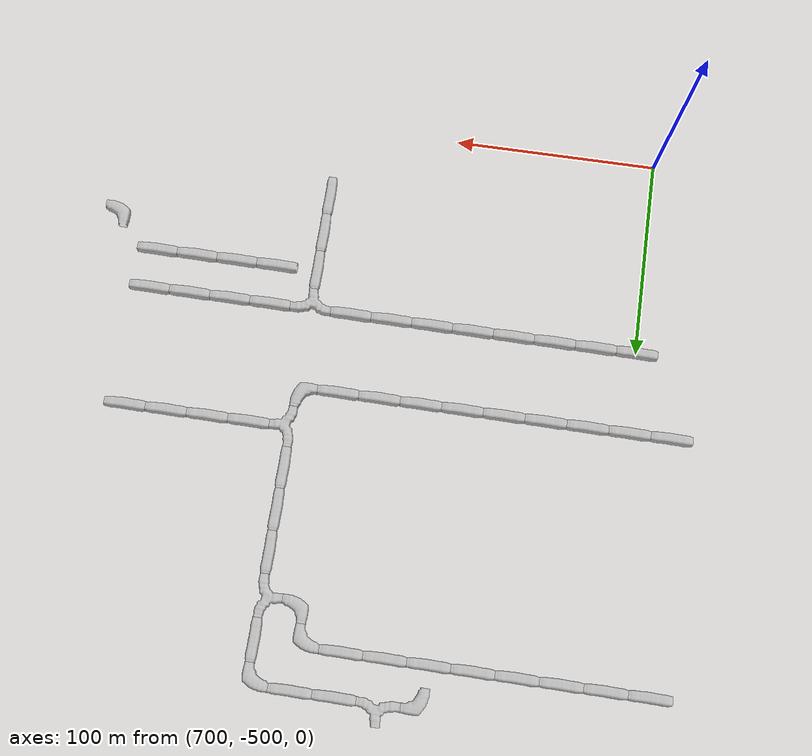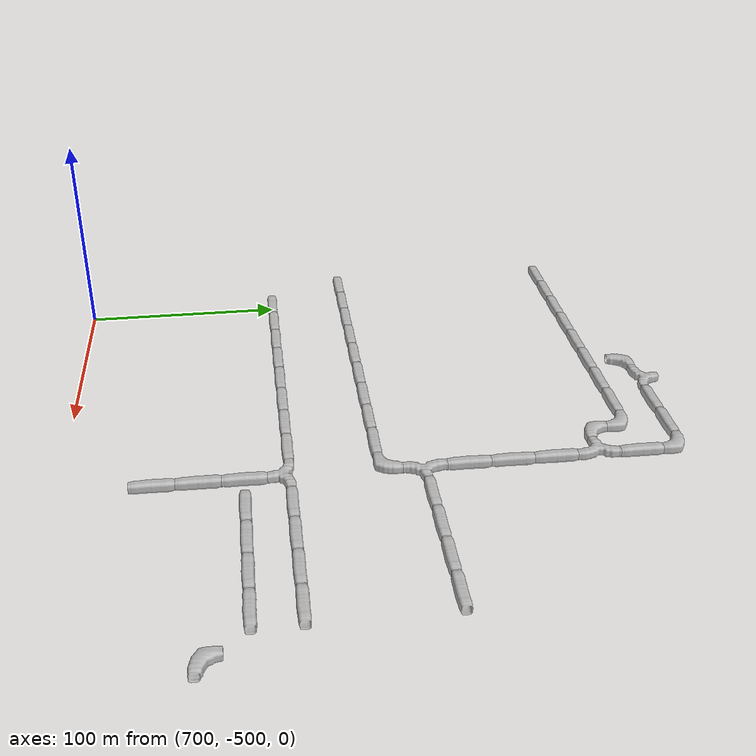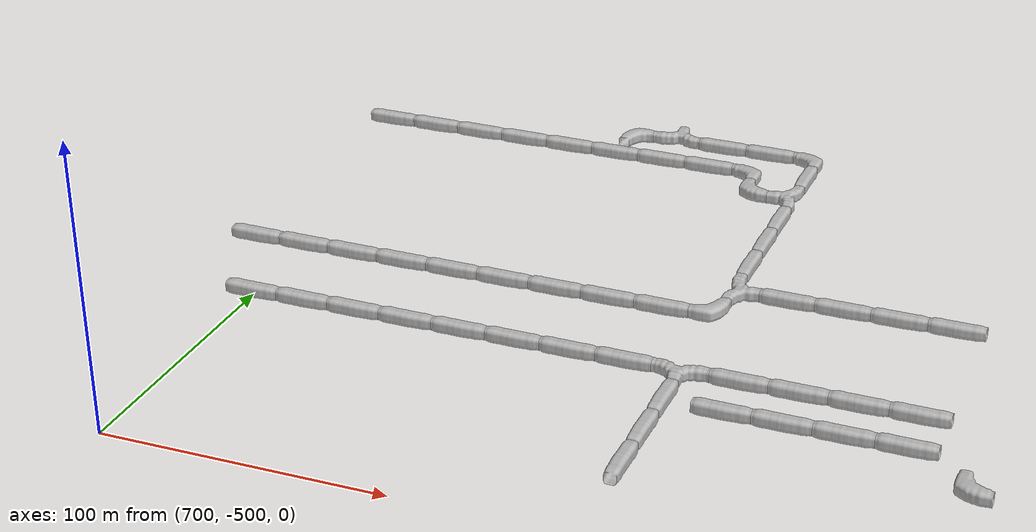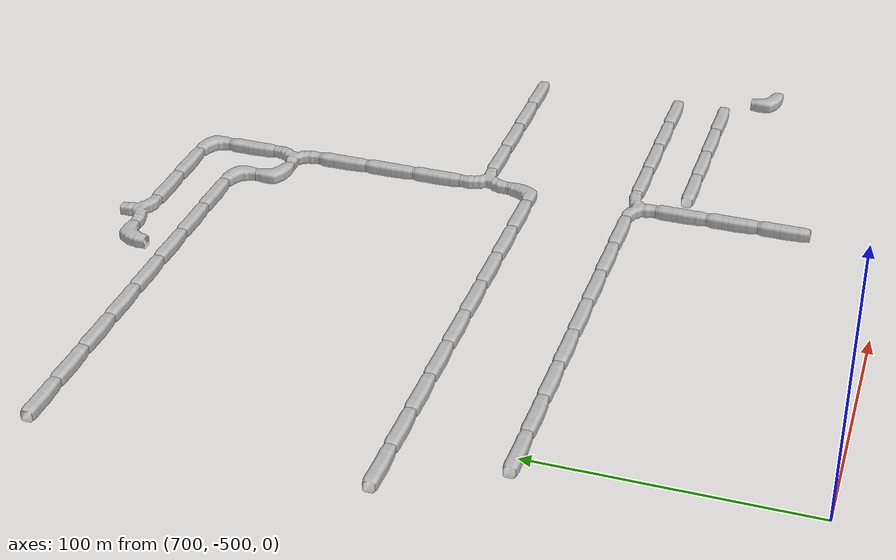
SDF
<sdf version="1.6">
 <world name="cave_32000_8">
  <include>
   <static>true</static>
   <name>cave_34_-18</name>
   <pose>680 -360 0 0 0 1.5707963267948966</pose>
   <uri>model://cave_straight_20m</uri>
  </include>
  <include>
   <static>true</static>
   <name>cave_35_-18</name>
   <pose>700 -360 0 0 0 1.5707963267948966</pose>
   <uri>model://cave_straight_20m</uri>
  </include>
  <include>
   <static>true</static>
   <name>cave_36_-18</name>
   <pose>720 -360 0 0 0 1.5707963267948966</pose>
   <uri>model://cave_straight_20m</uri>
  </include>
  <include>
   <static>true</static>
   <name>cave_37_-18</name>
   <pose>740 -360 0 0 0 1.5707963267948966</pose>
   <uri>model://cave_straight_20m</uri>
  </include>
  <include>
   <static>true</static>
   <name>cave_38_-18</name>
   <pose>760 -360 0 0 0 1.5707963267948966</pose>
   <uri>model://cave_straight_20m</uri>
  </include>
  <include>
   <static>true</static>
   <name>cave_39_-18</name>
   <pose>780 -360 0 0 0 1.5707963267948966</pose>
   <uri>model://cave_straight_20m</uri>
  </include>
  <include>
   <static>true</static>
   <name>cave_40_-18</name>
   <pose>800 -360 0 0 0 1.5707963267948966</pose>
   <uri>model://cave_straight_20m</uri>
  </include>
  <include>
   <static>true</static>
   <name>cave_41_-18</name>
   <pose>820 -360 0 0 0 1.5707963267948966</pose>
   <uri>model://cave_straight_20m</uri>
  </include>
  <include>
   <static>true</static>
   <name>cave_42_-18</name>
   <pose>840 -360 0 0 0 1.5707963267948966</pose>
   <uri>model://cave_straight_20m</uri>
  </include>
  <include>
   <static>true</static>
   <name>cave_43_-18</name>
   <pose>860 -360 0 0 0 1.5707963267948966</pose>
   <uri>model://cave_L_20m</uri>
  </include>
  <include>
   <static>true</static>
   <name>cave_43_-17</name>
   <pose>860 -340 0 0 0 -1.5707963267948966</pose>
   <uri>model://cave_3way_20m</uri>
  </include>
  <include>
   <static>true</static>
   <name>cave_44_-17</name>
   <pose>880 -340 0 0 0 1.5707963267948966</pose>
   <uri>model://cave_straight_20m</uri>
  </include>
  <include>
   <static>true</static>
   <name>cave_45_-17</name>
   <pose>900 -340 0 0 0 1.5707963267948966</pose>
   <uri>model://cave_straight_20m</uri>
  </include>
  <include>
   <static>true</static>
   <name>cave_46_-17</name>
   <pose>920 -340 0 0 0 1.5707963267948966</pose>
   <uri>model://cave_straight_20m</uri>
  </include>
  <include>
   <static>true</static>
   <name>cave_47_-17</name>
   <pose>940 -340 0 0 0 1.5707963267948966</pose>
   <uri>model://cave_straight_20m</uri>
  </include>
  <include>
   <static>true</static>
   <name>cave_43_-16</name>
   <pose>860 -320 0 0 0 0.0</pose>
   <uri>model://cave_straight_20m</uri>
  </include>
  <include>
   <static>true</static>
   <name>cave_43_-15</name>
   <pose>860 -300 0 0 0 0.0</pose>
   <uri>model://cave_straight_20m</uri>
  </include>
  <include>
   <static>true</static>
   <name>cave_43_-14</name>
   <pose>860 -280 0 0 0 0.0</pose>
   <uri>model://cave_straight_20m</uri>
  </include>
  <include>
   <static>true</static>
   <name>cave_43_-13</name>
   <pose>860 -260 0 0 0 1.5707963267948966</pose>
   <uri>model://cave_3way_20m</uri>
  </include>
  <include>
   <static>true</static>
   <name>cave_42_-13</name>
   <pose>840 -260 0 0 0 0.0</pose>
   <uri>model://cave_L_20m</uri>
  </include>
  <include>
   <static>true</static>
   <name>cave_42_-12</name>
   <pose>840 -240 0 0 0 3.141592653589793</pose>
   <uri>model://cave_L_20m</uri>
  </include>
  <include>
   <static>true</static>
   <name>cave_41_-12</name>
   <pose>820 -240 0 0 0 1.5707963267948966</pose>
   <uri>model://cave_straight_20m</uri>
  </include>
  <include>
   <static>true</static>
   <name>cave_40_-12</name>
   <pose>800 -240 0 0 0 1.5707963267948966</pose>
   <uri>model://cave_straight_20m</uri>
  </include>
  <include>
   <static>true</static>
   <name>cave_39_-12</name>
   <pose>780 -240 0 0 0 1.5707963267948966</pose>
   <uri>model://cave_straight_20m</uri>
  </include>
  <include>
   <static>true</static>
   <name>cave_38_-12</name>
   <pose>760 -240 0 0 0 1.5707963267948966</pose>
   <uri>model://cave_straight_20m</uri>
  </include>
  <include>
   <static>true</static>
   <name>cave_37_-12</name>
   <pose>740 -240 0 0 0 1.5707963267948966</pose>
   <uri>model://cave_straight_20m</uri>
  </include>
  <include>
   <static>true</static>
   <name>cave_36_-12</name>
   <pose>720 -240 0 0 0 1.5707963267948966</pose>
   <uri>model://cave_straight_20m</uri>
  </include>
  <include>
   <static>true</static>
   <name>cave_35_-12</name>
   <pose>700 -240 0 0 0 1.5707963267948966</pose>
   <uri>model://cave_straight_20m</uri>
  </include>
  <include>
   <static>true</static>
   <name>cave_34_-12</name>
   <pose>680 -240 0 0 0 1.5707963267948966</pose>
   <uri>model://cave_straight_20m</uri>
  </include>
  <include>
   <static>true</static>
   <name>cave_43_-12</name>
   <pose>860 -240 0 0 0 0.0</pose>
   <uri>model://cave_straight_20m</uri>
  </include>
  <include>
   <static>true</static>
   <name>cave_43_-11</name>
   <pose>860 -220 0 0 0 3.141592653589793</pose>
   <uri>model://cave_L_20m</uri>
  </include>
  <include>
   <static>true</static>
   <name>cave_42_-11</name>
   <pose>840 -220 0 0 0 1.5707963267948966</pose>
   <uri>model://cave_straight_20m</uri>
  </include>
  <include>
   <static>true</static>
   <name>cave_41_-11</name>
   <pose>820 -220 0 0 0 1.5707963267948966</pose>
   <uri>model://cave_straight_20m</uri>
  </include>
  <include>
   <static>true</static>
   <name>cave_40_-11</name>
   <pose>800 -220 0 0 0 0.0</pose>
   <uri>model://cave_3way_20m</uri>
  </include>
  <include>
   <static>true</static>
   <name>cave_39_-11</name>
   <pose>780 -220 0 0 0 -1.5707963267948966</pose>
   <uri>model://cave_L_20m</uri>
  </include>
  <include>
   <static>true</static>
   <name>cave_35_-20</name>
   <pose>700 -400 0 0 0 1.5707963267948966</pose>
   <uri>model://cave_straight_20m</uri>
  </include>
  <include>
   <static>true</static>
   <name>cave_36_-20</name>
   <pose>720 -400 0 0 0 1.5707963267948966</pose>
   <uri>model://cave_straight_20m</uri>
  </include>
  <include>
   <static>true</static>
   <name>cave_37_-20</name>
   <pose>740 -400 0 0 0 1.5707963267948966</pose>
   <uri>model://cave_straight_20m</uri>
  </include>
  <include>
   <static>true</static>
   <name>cave_38_-20</name>
   <pose>760 -400 0 0 0 1.5707963267948966</pose>
   <uri>model://cave_straight_20m</uri>
  </include>
  <include>
   <static>true</static>
   <name>cave_39_-20</name>
   <pose>780 -400 0 0 0 1.5707963267948966</pose>
   <uri>model://cave_straight_20m</uri>
  </include>
  <include>
   <static>true</static>
   <name>cave_40_-20</name>
   <pose>800 -400 0 0 0 1.5707963267948966</pose>
   <uri>model://cave_straight_20m</uri>
  </include>
  <include>
   <static>true</static>
   <name>cave_41_-20</name>
   <pose>820 -400 0 0 0 1.5707963267948966</pose>
   <uri>model://cave_straight_20m</uri>
  </include>
  <include>
   <static>true</static>
   <name>cave_42_-20</name>
   <pose>840 -400 0 0 0 1.5707963267948966</pose>
   <uri>model://cave_straight_20m</uri>
  </include>
  <include>
   <static>true</static>
   <name>cave_43_-20</name>
   <pose>860 -400 0 0 0 3.141592653589793</pose>
   <uri>model://cave_3way_20m</uri>
  </include>
  <include>
   <static>true</static>
   <name>cave_44_-20</name>
   <pose>880 -400 0 0 0 1.5707963267948966</pose>
   <uri>model://cave_straight_20m</uri>
  </include>
  <include>
   <static>true</static>
   <name>cave_45_-20</name>
   <pose>900 -400 0 0 0 1.5707963267948966</pose>
   <uri>model://cave_straight_20m</uri>
  </include>
  <include>
   <static>true</static>
   <name>cave_46_-20</name>
   <pose>920 -400 0 0 0 1.5707963267948966</pose>
   <uri>model://cave_straight_20m</uri>
  </include>
  <include>
   <static>true</static>
   <name>cave_47_-20</name>
   <pose>940 -400 0 0 0 1.5707963267948966</pose>
   <uri>model://cave_straight_20m</uri>
  </include>
  <include>
   <static>true</static>
   <name>cave_48_-22</name>
   <pose>960 -440 0 0 0 0.0</pose>
   <uri>model://cave_L_20m</uri>
  </include>
  <include>
   <static>true</static>
   <name>cave_47_-21</name>
   <pose>940 -420 0 0 0 1.5707963267948966</pose>
   <uri>model://cave_straight_20m</uri>
  </include>
  <include>
   <static>true</static>
   <name>cave_46_-21</name>
   <pose>920 -420 0 0 0 1.5707963267948966</pose>
   <uri>model://cave_straight_20m</uri>
  </include>
  <include>
   <static>true</static>
   <name>cave_45_-21</name>
   <pose>900 -420 0 0 0 1.5707963267948966</pose>
   <uri>model://cave_straight_20m</uri>
  </include>
  <include>
   <static>true</static>
   <name>cave_44_-21</name>
   <pose>880 -420 0 0 0 1.5707963267948966</pose>
   <uri>model://cave_straight_20m</uri>
  </include>
  <include>
   <static>true</static>
   <name>cave_43_-21</name>
   <pose>860 -420 0 0 0 0.0</pose>
   <uri>model://cave_straight_20m</uri>
  </include>
  <include>
   <static>true</static>
   <name>cave_43_-22</name>
   <pose>860 -440 0 0 0 0.0</pose>
   <uri>model://cave_straight_20m</uri>
  </include>
  <include>
   <static>true</static>
   <name>cave_43_-23</name>
   <pose>860 -460 0 0 0 0.0</pose>
   <uri>model://cave_straight_20m</uri>
  </include>
 </world>
</sdf>
